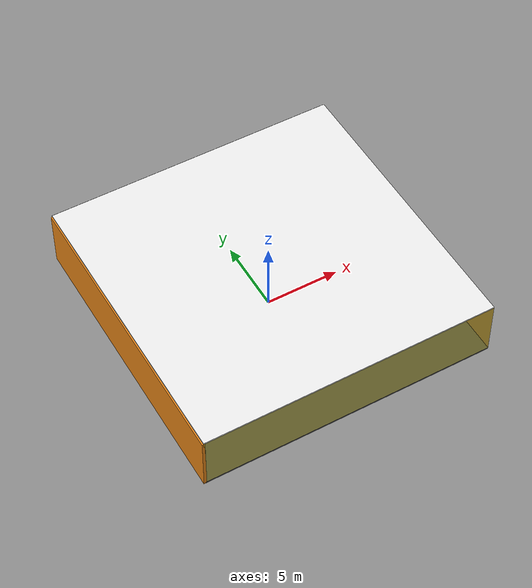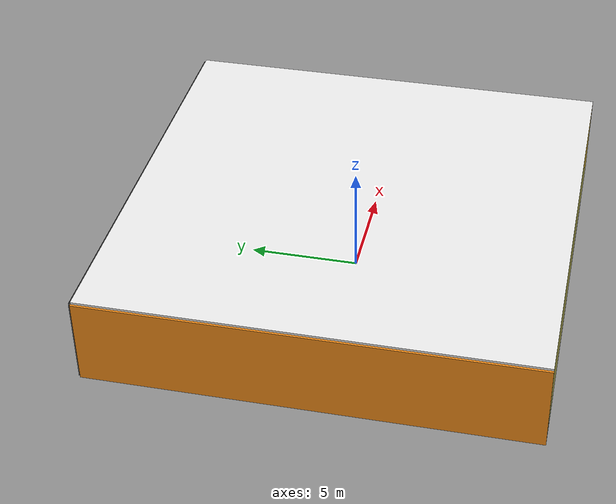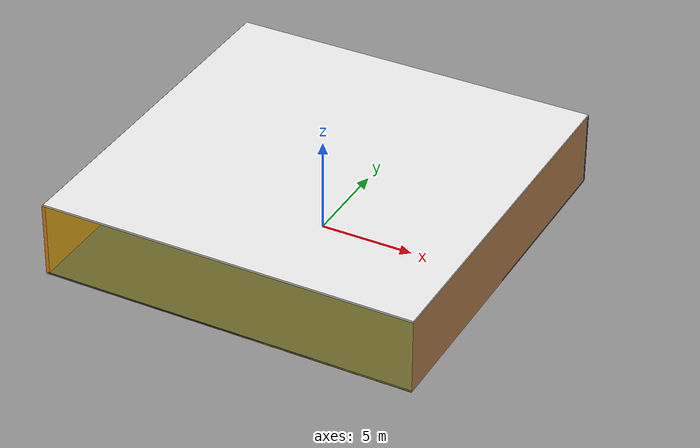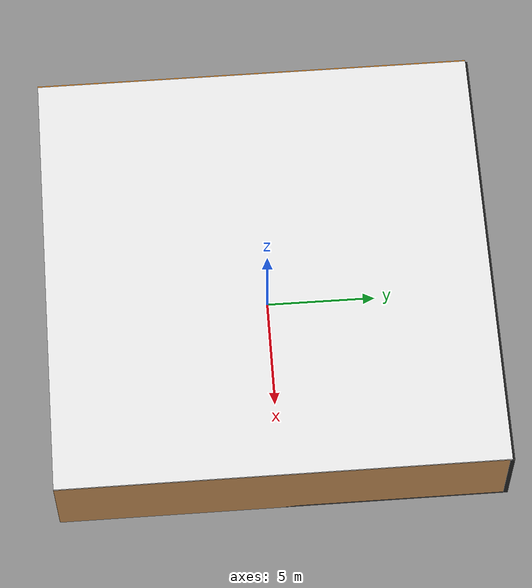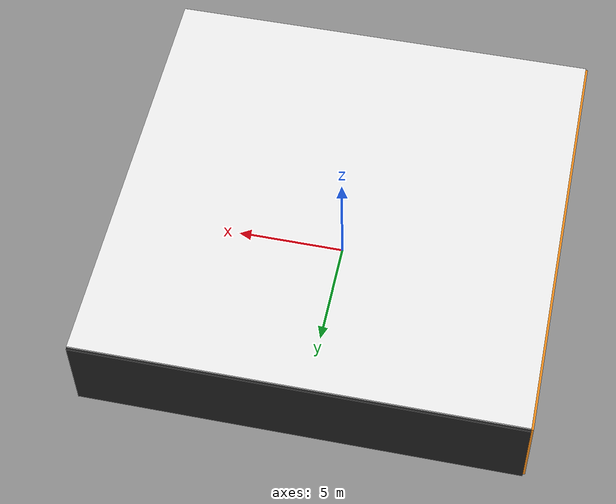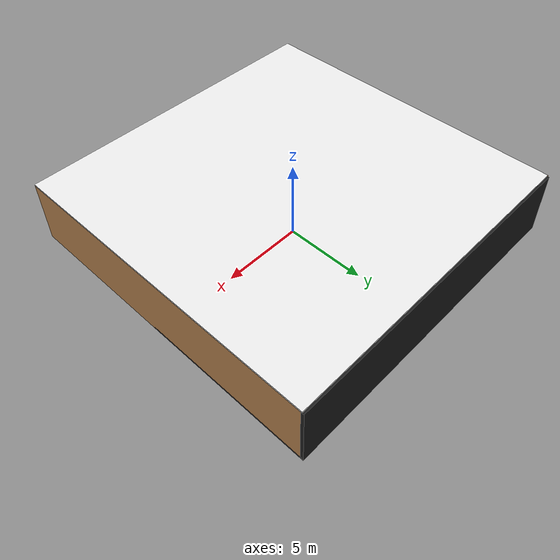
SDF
<sdf version="1.4">
 <world name="default">
  <physics type="ode">
   <max_step_size>0.001</max_step_size>
   <real_time_factor>1</real_time_factor>
   <real_time_update_rate>1000</real_time_update_rate>
   <gravity>0 0 -9.8</gravity>
  </physics>
  <scene><ambient>0.4 0.4 0.4 1</ambient><background>0.7 0.7 0.7 1</background><shadows>1</shadows></scene>
  <model name="Surrounding">
   <static>1</static>
   <link name="Ceiling">
    <collision name="Ceiling_Collision"><geometry><box><size>20 20 0.1</size></box></geometry></collision>
    <visual name="Ceiling_Visual">
     <geometry><box><size>20 20 0.1</size></box></geometry>
     <material>
      <script><uri>file://media/materials/scripts/gazebo.material</uri><name>Gazebo/White</name></script>
     </material>
    </visual>
    <pose>0 0 4.05 0 0 0</pose>
   </link>
   <link name="Wall_South">
    <collision name="Wall_South_Collision">
     <geometry><box><size>20 0 4</size></box></geometry>
     <pose>0 0 2 0 -0 0</pose>
    </collision>
    <visual name="Wall_South_Visual">
     <pose>0 0 2 0 -0 0</pose>
     <geometry><box><size>20 0 4</size></box></geometry>
     <material>
      <script>
       <uri>file://media/materials/scripts/gazebo.material</uri>
       <name>Gazebo/YellowTransparent</name>
      </script>
     </material>
    </visual>
    <velocity_decay><linear>0</linear><angular>0</angular></velocity_decay>
    <pose>0 -10 0 0 -0 0</pose>
   </link>
   <link name="Wall_East">
    <collision name="Wall_21_Collision">
     <geometry><box><size>20 0 4</size></box></geometry>
     <pose>0 0 2 0 -0 0</pose>
    </collision>
    <visual name="Wall_21_Visual">
     <pose>0 0 2 0 -0 0</pose>
     <geometry><box><size>20 0 4</size></box></geometry>
     <material>
      <script><uri>file://media/materials/scripts/gazebo.material</uri><name>Gazebo/Wood</name></script>
     </material>
    </visual>
    <velocity_decay><linear>0</linear><angular>0</angular></velocity_decay>
    <pose>10 0 0 0 -0 1.5708</pose>
   </link>
   <link name="Wall_North">
    <collision name="Wall_22_Collision">
     <geometry><box><size>20 0.2 4</size></box></geometry>
     <pose>0 0 2 0 -0 0</pose>
    </collision>
    <visual name="Wall_22_Visual">
     <pose>0 0 2 0 -0 0</pose>
     <geometry><box><size>20 0.2 4</size></box></geometry>
     <material>
      <script><uri>file://media/materials/scripts/gazebo.material</uri><name>Gazebo/Black</name></script>
     </material>
    </visual>
    <velocity_decay><linear>0</linear><angular>0</angular></velocity_decay>
    <pose>0 10 0 0 -0 0</pose>
   </link>
   <link name="Wall_West">
    <collision name="Wall_23_Collision">
     <geometry><box><size>20 0.2 4</size></box></geometry>
     <pose>0 0 2 0 -0 0</pose>
    </collision>
    <visual name="Wall_23_Visual">
     <pose>0 0 2 0 -0 0</pose>
     <geometry><box><size>20 0.2 4</size></box></geometry>
     <material>
      <script><uri>file://media/materials/scripts/gazebo.material</uri><name>Gazebo/Orange</name></script>
     </material>
    </visual>
    <velocity_decay><linear>0</linear><angular>0</angular></velocity_decay>
    <pose>-10 0 0 0 0 -1.5708</pose>
   </link>
   <link name="Ground_link">
    <collision name="collision">
     <pose>0 0 .05 0 -0 0</pose>
     <geometry><box><size>20 20 0.1</size></box></geometry>
    </collision>
    <visual name="visual">
     <pose>0 0 .05 0 -0 0</pose>
     <geometry><box><size>20 20 0.1</size></box></geometry>
     <material>
      <script><uri>file://media/materials/scripts/gazebo.material</uri><name>Gazebo/Road</name></script>
     </material>
    </visual>
   </link>
   <static>1</static>
  </model>
  <spherical_coordinates>
   <surface_model>EARTH_WGS84</surface_model>
   <latitude_deg>0</latitude_deg>
   <longitude_deg>0</longitude_deg>
   <elevation>0</elevation>
   <heading_deg>0</heading_deg>
  </spherical_coordinates>
  <light name="lightball_0" type="diffuse">
   <diffuse>0.8 0.8 0.8 1</diffuse>
   <specular>0.2 0.2 0.2 1</specular>
   <attenuation>
    <range>100</range>
    <constant>0.7</constant>
    <linear>0.01</linear>
    <quadratic>0.001</quadratic>
   </attenuation>
   <direction>-0.5 0.1 -0.9</direction>
   <pose>3.26414728562 4.65412176267 1.62478341224 0 0 0</pose>
  </light>
  <light name="lightball_1" type="diffuse">
   <diffuse>0.8 0.8 0.8 1</diffuse>
   <specular>0.2 0.2 0.2 1</specular>
   <attenuation>
    <range>100</range>
    <constant>0.7</constant>
    <linear>0.01</linear>
    <quadratic>0.001</quadratic>
   </attenuation>
   <direction>-0.5 0.1 -0.9</direction>
   <pose>-2.51750478802 -7.05261910196 2.28210536776 0 0 0</pose>
  </light>
  <light name="lightball_2" type="diffuse">
   <diffuse>0.8 0.8 0.8 1</diffuse>
   <specular>0.2 0.2 0.2 1</specular>
   <attenuation>
    <range>100</range>
    <constant>0.7</constant>
    <linear>0.01</linear>
    <quadratic>0.001</quadratic>
   </attenuation>
   <direction>-0.5 0.1 -0.9</direction>
   <pose>-4.24639429463 7.82405039965 3.47081720169 0 0 0</pose>
  </light>
  <light name="lightball_3" type="diffuse">
   <diffuse>0.8 0.8 0.8 1</diffuse>
   <specular>0.2 0.2 0.2 1</specular>
   <attenuation>
    <range>100</range>
    <constant>0.7</constant>
    <linear>0.01</linear>
    <quadratic>0.001</quadratic>
   </attenuation>
   <direction>-0.5 0.1 -0.9</direction>
   <pose>-7.06471139647 6.69391346927 2.69899713404 0 0 0</pose>
  </light>
  <include><uri>model://cabinet</uri><pose>-2.15735788365 0.641345629371 0 0 0 1.44984622938</pose></include>
  <include>
   <uri>model://robocup_3Dsim_goal</uri>
   <pose>0.963503966594 -4.41414834494 0 0 0 2.31820099795</pose>
  </include>
  <include>
   <uri>model://construction_cone</uri>
   <pose>5.63993483249 -0.304854396769 0 0 0 0.850210128518</pose>
  </include>
  <include>
   <uri>model://construction_cone</uri>
   <pose>7.34999539392 -4.04329213542 0 0 0 3.02687349719</pose>
  </include>
  <include>
   <uri>model://robocup_3Dsim_goal</uri>
   <pose>7.02828212429 0.79052111045 0 0 0 2.89477041914</pose>
  </include>
  <include><uri>model://cabinet</uri><pose>7.27456806078 4.73588957878 0 0 0 2.77193869115</pose></include>
 </world>
</sdf>

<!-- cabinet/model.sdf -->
<sdf version="1.5">
  <model name="cabinet">
    <static>true</static>
    <link name="cabinet_bottom_plate">
      <inertial>
        <pose>0 0 -1 0 0 0</pose>
        <inertia>
          <ixx>2.050000</ixx>
          <ixy>0</ixy>
          <ixz>0</ixz>
          <iyy>2.050000</iyy>
          <iyz>0</iyz>
          <izz>2.050000</izz>
        </inertia>
        <mass>25.000000</mass>
      </inertial>
      <collision name="cabinet_bottom_plate_geom">
        <pose>0 0 0.010000 0 0 0</pose>
        <geometry>
          <box>
            <size>0.450000 0.450000 0.020000</size>
          </box>
        </geometry>
      </collision>
      <visual name="cabinet_bottom_plate_geom_visual">
        <pose>0 0 0.010000 0 0 0</pose>
        <geometry>
          <box>
            <size>0.450000 0.450000 0.020000</size>
          </box>
        </geometry>
        <material>
          <script>
            <uri>model://media/materials/scripts/gazebo.material</uri>
            <name>Gazebo/Wood</name>
          </script>
        </material>
      </visual>
      <collision name="cabinet_bottom_plate_geom_cabinet_back_plate">
        <pose>0.235000 0 0.510000 0 0 0</pose>
        <geometry>
          <box>
            <size>0.020000 0.450000 1.020000</size>
          </box>
        </geometry>
      </collision>
      <visual name="cabinet_bottom_plate_geom_cabinet_back_plate_visual">
        <pose>0.235000 0 0.510000 0 0 0</pose>
        <geometry>
          <box>
            <size>0.020000 0.450000 1.020000</size>
          </box>
        </geometry>
        <material>
          <script>
            <uri>model://media/materials/scripts/gazebo.material</uri>
            <name>Gazebo/Wood</name>
          </script>
        </material>
      </visual>
      <collision name="cabinet_bottom_plate_geom_cabinet_left_plate">
        <pose>0 0.235000 0.510000 0 0 0</pose>
        <geometry>
          <box>
            <size>0.450000 0.020000 1.020000</size>
          </box>
        </geometry>
      </collision>
      <visual name="cabinet_bottom_plate_geom_cabinet_left_plate_visual">
        <pose>0 0.235000 0.510000 0 0 0</pose>
        <geometry>
          <box>
            <size>0.450000 0.020000 1.020000</size>
          </box>
        </geometry>
        <material>
          <script>
            <uri>model://media/materials/scripts/gazebo.material</uri>
            <name>Gazebo/Wood</name>
          </script>
        </material>
      </visual>
      <collision name="cabinet_bottom_plate_geom_cabinet_middle_plate">
        <pose>0 0 0.510000 0 0 0</pose>
        <geometry>
          <box>
            <size>0.450000 0.450000 0.020000</size>
          </box>
        </geometry>
      </collision>
      <visual name="cabinet_bottom_plate_geom_cabinet_middle_plate_visual">
        <pose>0 0 0.510000 0 0 0</pose>
        <geometry>
          <box>
            <size>0.450000 0.450000 0.020000</size>
          </box>
        </geometry>
        <material>
          <script>
            <uri>model://media/materials/scripts/gazebo.material</uri>
            <name>Gazebo/Wood</name>
          </script>
        </material>
      </visual>
      <collision name="cabinet_bottom_plate_geom_cabinet_right_plate">
        <pose>0 -0.235000 0.510000 0 0 0</pose>
        <geometry>
          <box>
            <size>0.450000 0.020000 1.020000</size>
          </box>
        </geometry>
      </collision>
      <visual name="cabinet_bottom_plate_geom_cabinet_right_plate_visual">
        <pose>0 -0.235000 0.510000 0 0 0</pose>
        <geometry>
          <box>
            <size>0.450000 0.020000 1.020000</size>
          </box>
        </geometry>
        <material>
          <script>
            <uri>model://media/materials/scripts/gazebo.material</uri>
            <name>Gazebo/Wood</name>
          </script>
        </material>
      </visual>
      <collision name="cabinet_bottom_plate_geom_cabinet_top_plate">
        <pose>0 0 1.010000 0 0 0</pose>
        <geometry>
          <box>
            <size>0.450000 0.450000 0.020000</size>
          </box>
        </geometry>
      </collision>
      <visual name="cabinet_bottom_plate_geom_cabinet_top_plate_visual">
        <pose>0 0 1.010000 0 0 0</pose>
        <geometry>
          <box>
            <size>0.450000 0.450000 0.020000</size>
          </box>
        </geometry>
        <material>
          <script>
            <uri>model://media/materials/scripts/gazebo.material</uri>
            <name>Gazebo/Wood</name>
          </script>
        </material>
      </visual>
    </link>
  </model>
</sdf>

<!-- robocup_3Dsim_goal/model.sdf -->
<sdf version="1.5">
  <model name="robocup_3d_goal">
    <static>true</static>
    <link name="left_post">
      <pose>0 1.05 0.45 0 0 0</pose>
      <collision name="collision">
        <geometry>
          <cylinder>
            <radius>0.05</radius>
            <length>0.9</length>
          </cylinder>
        </geometry>
      </collision>
      <visual name="visual">
        <geometry>
          <cylinder>
            <radius>0.05</radius>
            <length>0.9</length>
          </cylinder>
        </geometry>
        <material>
          <script>
            <uri>file://media/materials/scripts/gazebo.material</uri>
            <name>Gazebo/ZincYellow</name>
          </script>
        </material>
      </visual>
    </link>
    <link name="left_support_horiz_lower">
      <pose>0.30 1.05 0.01 0 0 0</pose>
      <collision name="collision">
        <geometry>
          <box>
            <size>0.50 0.02 0.02</size>
          </box>
        </geometry>
      </collision>
      <visual name="visual">
        <geometry>
          <box>
            <size>0.50 0.02 0.02</size>
          </box>
        </geometry>
        <material>
          <script>
            <uri>file://media/materials/scripts/gazebo.material</uri>
            <name>Gazebo/White</name>
          </script>
        </material>
      </visual>
    </link>
    <link name="left_support_horiz_upper">
      <pose>0.30 1.05 0.79 0 0 0</pose>
      <collision name="collision">
        <geometry>
          <box>
            <size>0.50 0.02 0.02</size>
          </box>
        </geometry>
      </collision>
      <visual name="visual">
        <geometry>
          <box>
            <size>0.50 0.02 0.02</size>
          </box>
        </geometry>
        <material>
          <script>
            <uri>file://media/materials/scripts/gazebo.material</uri>
            <name>Gazebo/White</name>
          </script>
        </material>
      </visual>
    </link>
    <link name="left_support_vertical">
      <pose>0.56 1.05 0.4 0 1.5708 0</pose>
      <collision name="collision">
        <geometry>
          <box>
            <size>0.80 0.02 0.02</size>
          </box>
        </geometry>
      </collision>
      <visual name="visual">
        <geometry>
          <box>
            <size>0.80 0.02 0.02</size>
          </box>
        </geometry>
        <material>
          <script>
            <uri>file://media/materials/scripts/gazebo.material</uri>
            <name>Gazebo/White</name>
          </script>
        </material>
      </visual>
    </link>
    <link name="right_support_horiz_lower">
      <pose>0.30 -1.05 0.01 0 0 0</pose>
      <collision name="collision">
        <geometry>
          <box>
            <size>0.50 0.02 0.02</size>
          </box>
        </geometry>
      </collision>
      <visual name="visual">
        <geometry>
          <box>
            <size>0.50 0.02 0.02</size>
          </box>
        </geometry>
        <material>
          <script>
            <uri>file://media/materials/scripts/gazebo.material</uri>
            <name>Gazebo/White</name>
          </script>
        </material>
      </visual>
    </link>
    <link name="right_support_horiz_upper">
      <pose>0.30 -1.05 0.79 0 0 0</pose>
      <collision name="collision">
        <geometry>
          <box>
            <size>0.50 0.02 0.02</size>
          </box>
        </geometry>
      </collision>
      <visual name="visual">
        <geometry>
          <box>
            <size>0.50 0.02 0.02</size>
          </box>
        </geometry>
        <material>
          <script>
            <uri>file://media/materials/scripts/gazebo.material</uri>
            <name>Gazebo/White</name>
          </script>
        </material>
      </visual>
    </link>
    <link name="right_support_vertical">
      <pose>0.56 -1.05 0.4 0 1.5708 0</pose>
      <collision name="collision">
        <geometry>
          <box>
            <size>0.80 0.02 0.02</size>
          </box>
        </geometry>
      </collision>
      <visual name="visual">
        <geometry>
          <box>
            <size>0.80 0.02 0.02</size>
          </box>
        </geometry>
        <material>
          <script>
            <uri>file://media/materials/scripts/gazebo.material</uri>
            <name>Gazebo/White</name>
          </script>
        </material>
      </visual>
    </link>
    <link name="center_support_horiz_lower">
      <pose>0.56 0 0.01 0 1.5708 0</pose>
      <collision name="collision">
        <geometry>
          <box>
            <size>0.02 2.08 0.02</size>
          </box>
        </geometry>
      </collision>
      <visual name="visual">
        <geometry>
          <box>
            <size>0.02 2.08 0.02</size>
          </box>
        </geometry>
        <material>
          <script>
            <uri>file://media/materials/scripts/gazebo.material</uri>
            <name>Gazebo/White</name>
          </script>
        </material>
      </visual>
    </link>
    <link name="center_support_horiz_upper">
      <pose>0.56 0 0.79 0 1.5708 0</pose>
      <collision name="collision">
        <geometry>
          <box>
            <size>0.02 2.08 0.02</size>
          </box>
        </geometry>
      </collision>
      <visual name="visual">
        <geometry>
          <box>
            <size>0.02 2.08 0.02</size>
          </box>
        </geometry>
        <material>
          <script>
            <uri>file://media/materials/scripts/gazebo.material</uri>
            <name>Gazebo/White</name>
          </script>
        </material>
      </visual>
    </link>
    <link name="right_post">
      <pose>0 -1.05 0.45 0 0 0</pose>
      <collision name="collision">
        <geometry>
          <cylinder>
            <radius>0.05</radius>
            <length>0.9</length>
          </cylinder>
        </geometry>
      </collision>
      <visual name="visual">
        <geometry>
          <cylinder>
            <radius>0.05</radius>
            <length>0.9</length>
          </cylinder>
        </geometry>
        <material>
          <script>
            <uri>file://media/materials/scripts/gazebo.material</uri>
            <name>Gazebo/ZincYellow</name>
          </script>
        </material>
      </visual>
    </link>
    <link name="crossbar">
      <pose>0 0 0.85 1.57 1.57 0</pose>
      <collision name="collision">
        <geometry>
          <cylinder>
            <radius>0.05</radius>
            <length>2.0</length>
          </cylinder>
        </geometry>
      </collision>
      <visual name="visual">
        <geometry>
          <cylinder>
            <radius>0.05</radius>
            <length>2.0</length>
          </cylinder>
        </geometry>
        <material>
          <script>
            <uri>file://media/materials/scripts/gazebo.material</uri>
            <name>Gazebo/ZincYellow</name>
          </script>
        </material>
      </visual>
    </link>
    <link name="center_net">
      <pose>0.56 0 0.40 0 0 0</pose>
      <collision name="collision">
        <geometry>
          <box>
            <size>0.01 2.1 0.80</size>
          </box>
        </geometry>
      </collision>
      <visual name="visual">
        <geometry>
          <box>
            <size>0.01 2.1 0.80</size>
          </box>
        </geometry>
        <material>
          <script>
            <uri>model://../model_source/models/robocup09_spl_field/materials/scripts/</uri>
            <uri>model://../model_source/models/robocup09_spl_field/materials/textures/</uri>
            <name>RoboCup/Net</name>
          </script>
        </material>
      </visual>
    </link>
    <link name="left_net">
      <pose>0.30 1.05 0.40 0 0 0</pose>
      <collision name="collision">
        <geometry>
          <box>
            <size>0.50 0.01 0.76</size>
          </box>
        </geometry>
      </collision>
      <visual name="visual">
        <geometry>
          <box>
            <size>0.50 0.01 0.76</size>
          </box>
        </geometry>
        <material>
          <script>
            <uri>model://../model_source/models/robocup09_spl_field/materials/scripts/</uri>
            <uri>model://../model_source/models/robocup09_spl_field/materials/textures/</uri>
            <name>RoboCup/Net</name>
          </script>
        </material>
      </visual>
    </link>
    <link name="right_net">
      <pose>0.30 -1.05 0.40 0 0 0</pose>
      <collision name="collision">
        <geometry>
          <box>
            <size>0.50 0.01 0.76</size>
          </box>
        </geometry>
      </collision>
      <visual name="visual">
        <geometry>
          <box>
            <size>0.50 0.01 0.76</size>
          </box>
        </geometry>
        <material>
          <script>
            <uri>model://../model_source/models/robocup09_spl_field/materials/scripts/</uri>
            <uri>model://../model_source/models/robocup09_spl_field/materials/textures/</uri>
            <name>RoboCup/Net</name>
          </script>
        </material>
      </visual>
    </link>
  </model>
</sdf>

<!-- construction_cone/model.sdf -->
<sdf version="1.5">
  <model name="Construction Cone">
    <link name="link">
      <collision name="collision">
        <geometry>
          <mesh>
            <scale>10 10 10</scale>
            <uri>file://isr-testbed/construction_cone/meshes/construction_cone.dae</uri>
          </mesh>
        </geometry>
      </collision>
      <visual name="visual">
        <geometry>
          <mesh>
            <scale>10 10 10</scale>
            <uri>file://isr-testbed/construction_cone/meshes/construction_cone.dae</uri>
          </mesh>
        </geometry>
      </visual>
    </link>
  </model>
</sdf>
